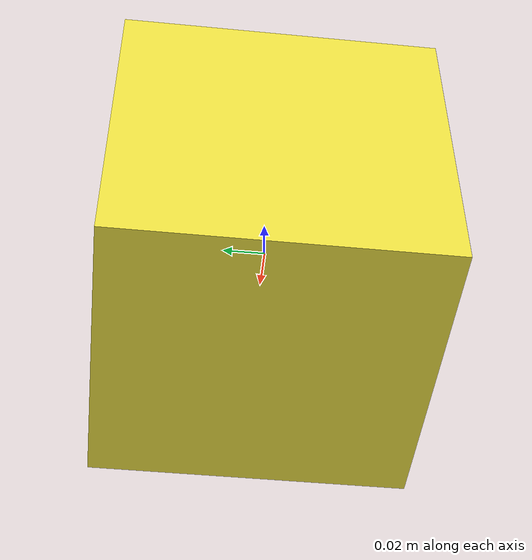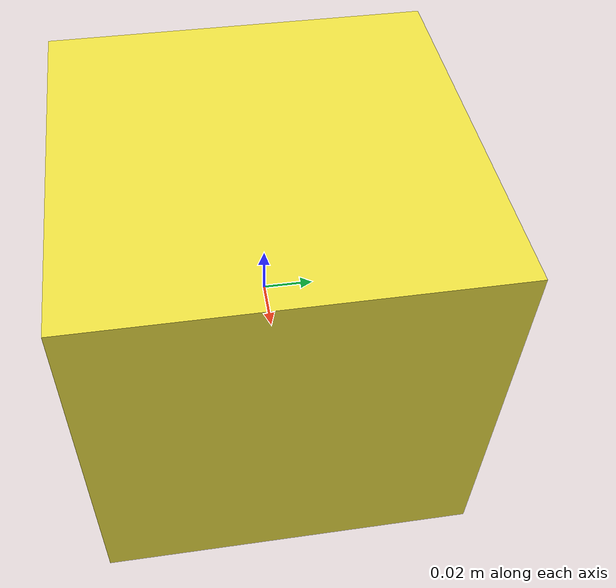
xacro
<?xml version="1.0"?>
<robot xmlns:xacro="http://ros.org/wiki/xacro"
       xmlns:ignition="http://ignitionrobotics.org/schema" name="axis_camera">

<!-- Xacro parameters -->
  <xacro:property name="namespace" value="axis_camera"/>

  <!-- Camera body -->
  <xacro:property name="camera_dim" value = "0.15"/>
  <xacro:property name="camera_elevation" value = "2.0"/>

  <!-- Dynamics and simulation -->
  <xacro:property name="camera_mass" value="0.5"/>

  <xacro:property name="eps_mass" value = "0.000001"/>
  <xacro:property name="eps_dim" value = "0.01"/>

  <xacro:property name="damping" value = "0.0"/>
  <xacro:property name="friction" value = "0.0"/>

  <xacro:property name="mu" value = "0.0"/>
  <xacro:property name="mu2" value = "0.0"/>

  <xacro:property name="sensor_offset" value = "0.0"/>

  <xacro:property name="visualize_sensors" value = "false"/>

  <!-- Sensors -->
  <xacro:property name="camera_hfov" value = "1.9198"/>
  <xacro:property name="camera_width" value = "640"/>
  <xacro:property name="camera_height" value = "480"/>
  <xacro:property name="camera_clip_near" value = "0.1"/>
  <xacro:property name="camera_clip_far" value = "25"/>
  <xacro:property name="camera_update_rate" value = "30"/>
  <xacro:property name="camera_topic_right" value = "right_camera"/>

<!-- Xacro functions -->
  <xacro:macro name="cylinder_inertia" params="m r h">
    <inertia ixx="${m*(3*r*r+h*h)/12}" ixy = "0" ixz = "0"
             iyy="${m*(3*r*r+h*h)/12}" iyz = "0"
             izz="${m*r*r/2}" />
  </xacro:macro>

  <xacro:macro name="box_inertia" params="m x y z">
    <inertia ixx="${m*(y*y+z*z)/12}" ixy = "0" ixz = "0"
             iyy="${m*(x*x+z*z)/12}" iyz = "0"
             izz="${m*(x*x+y*y)/12}" />
  </xacro:macro>

  <xacro:macro name="box_inertial" params="m x y z">
    <inertial>
      <mass value="${m}"/>
      <xacro:box_inertia m="${m}" x="${x}" y="${y}" z="${z}"/>
    </inertial>
  </xacro:macro>

  <xacro:macro name="cylinder_inertial" params="m r h">
    <inertial>
      <mass value="${m}"/>
      <xacro:cylinder_inertia m="${m}" r="${r}" h="${h}"/>
    </inertial>
  </xacro:macro>

  <xacro:macro name="eps_inertial">
    <inertial>
      <mass value="${eps_mass}"/>
      <xacro:box_inertia m="${eps_mass}" x="${eps_dim}" y="${eps_dim}" z="${eps_dim}"/>
    </inertial>
  </xacro:macro>

  <xacro:macro name="fixed_joint_params" params="joint">
    <gazebo reference="${joint}">
      <preserveFixedJoint>true</preserveFixedJoint>
      <disableFixedJointLumping>true</disableFixedJointLumping>
    </gazebo>
  </xacro:macro>

<!-- Body parts -->
  <gazebo>
    <static>false</static>
  </gazebo>
  <!-- Base link -->
  <link name="wall_link">
    <xacro:box_inertial m="2" x="0.4" y="0.4" z="0.4"/>
  </link>
  <gazebo reference="wall_link">
    <gravity>false</gravity>
  </gazebo>

  <!-- Camera box -->
  <link name="pan_link">
    <xacro:eps_inertial/>
  </link>
  <gazebo reference="pan_link">
    <gravity>false</gravity>
  </gazebo>
  <joint name="pan_joint" type="revolute">
    <origin rpy="0 0 0" xyz="0 0 0"/>
    <axis xyz="0 0 1"/>
    <parent link="wall_link"/>
    <child link="pan_link"/>
    <dynamics damping="${damping}" friction="${friction}"/>
    <limit effort="1000" lower="-600.28" upper="600.28" velocity="30"/>
  </joint>

  <link name="tilt_link">
    <xacro:eps_inertial/>
  </link>
  <gazebo reference="tilt_link">
    <gravity>false</gravity>
  </gazebo>
  <joint name="tilt_joint" type="revolute">
    <origin rpy="0 0 0" xyz="0 0 0"/>
    <axis xyz="0 1 0"/>
    <parent link="pan_link"/>
    <child link="tilt_link"/>
    <dynamics damping="${damping}" friction="${friction}"/>
    <limit effort="1000" lower="-600.28" upper="600.28" velocity="30"/>
  </joint>

  <link name="chassis_link">
    <xacro:eps_inertial/>
    <visual>
      <geometry>
        <box size="${camera_dim} ${camera_dim} ${camera_dim}"/>
      </geometry>
      <origin xyz="0 0 0"/>
    </visual>
  </link>
  <gazebo reference="chassis_link">
    <gravity>false</gravity>
  </gazebo>
  <joint name="chassis_joint" type="fixed">
    <parent link="tilt_link"/>
    <child link="chassis_link"/>
    <origin rpy="0 0 0" xyz="0 0 0"/>
  </joint>
  <xacro:fixed_joint_params joint="chassis_joint"/>

  <link name="imu_link">
    <xacro:eps_inertial/>
  </link>
  <gazebo reference="imu_link">
    <gravity>false</gravity>
    <sensor name="axis_imu_sensor" type="imu">
      <always_on>1</always_on>
      <update_rate>10.0</update_rate>
    </sensor>
  </gazebo>
  <joint name="imu_joint" type="fixed">
    <parent link="chassis_link"/>
    <child link="imu_link"/>
    <origin rpy="0 0 0" xyz="0 0 0"/>
  </joint>
  <xacro:fixed_joint_params joint="imu_joint"/>

  <link name="camera_link">
    <xacro:eps_inertial/>
    <visual>
      <origin xyz="0 0 0" rpy="0 ${pi/2} 0"/>
      <geometry>
        <cylinder length="0.005" radius="0.02"/>
      </geometry>
      <material name="gray">
        <color rgba="0.3 0.3 0.3 1"/>
      </material>
    </visual>
  </link>
  <gazebo reference="camera_link">
    <gravity>false</gravity>
    <sensor name="camera" type="camera">
      <camera>
        <horizontal_fov>${camera_hfov}</horizontal_fov>
        <image>
          <width>${camera_width}</width>
          <height>${camera_height}</height>
        </image>
        <clip>
          <near>${camera_clip_near}</near>
          <far>${camera_clip_far}</far>
        </clip>
      </camera>
      <always_on>1</always_on>
      <update_rate>${camera_update_rate}</update_rate>
      <visualize>${visualize_sensors}</visualize>
      <topic>${camera_topic_right}</topic>
      <plugin name="camera_controller" filename="libgazebo_ros_camera.so">
        <ros>
          <namespace>${namespace}</namespace>
        </ros>
      </plugin>
    </sensor>
  </gazebo>
  <joint name="camera_joint" type="fixed">
    <parent link="chassis_link"/>
    <child link="camera_link"/>
    <origin rpy="${-pi/2} 0 ${-pi/2}" xyz="${sensor_offset} 0 0"/>
  </joint>
  <xacro:fixed_joint_params joint="camera_joint"/>

<!-- Plugins -->
  <ros2_control name="GazeboSystem" type="system">
    <hardware>
      <plugin>gazebo_ros2_control/GazeboSystem</plugin>
    </hardware>
    <joint name="pan_joint">
      <command_interface name="velocity">
        <param name="min">-10</param>
        <param name="max">10</param>
      </command_interface>
      <state_interface name="position"/>
      <state_interface name="velocity"/>
      <state_interface name="effort"/>
    </joint>
    <joint name="tilt_joint">
      <command_interface name="velocity">
        <param name="min">-10</param>
        <param name="max">10</param>
      </command_interface>
      <state_interface name="position"/>
      <state_interface name="velocity"/>
      <state_interface name="effort"/>
    </joint>
    <sensor name="axis_imu_sensor">
      <state_interface name="orientation.x"/>
      <state_interface name="orientation.y"/>
      <state_interface name="orientation.z"/>
      <state_interface name="orientation.w"/>
      <state_interface name="angular_velocity.x"/>
      <state_interface name="angular_velocity.y"/>
      <state_interface name="angular_velocity.z"/>
      <state_interface name="linear_acceleration.x"/>
      <state_interface name="linear_acceleration.y"/>
      <state_interface name="linear_acceleration.z"/>
    </sensor>
  </ros2_control>

</robot>
